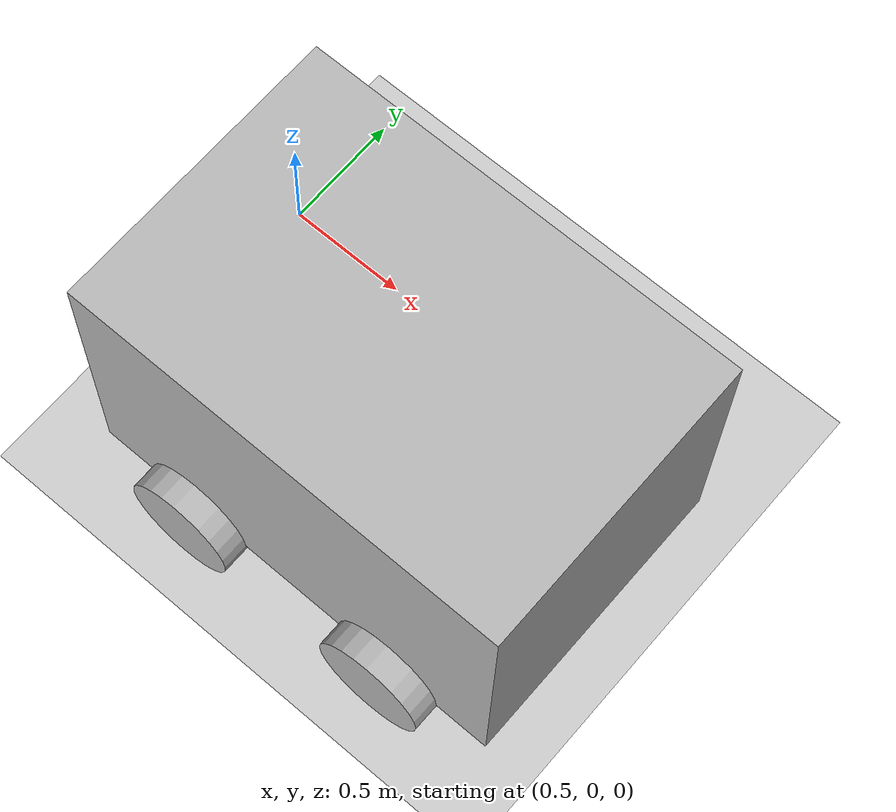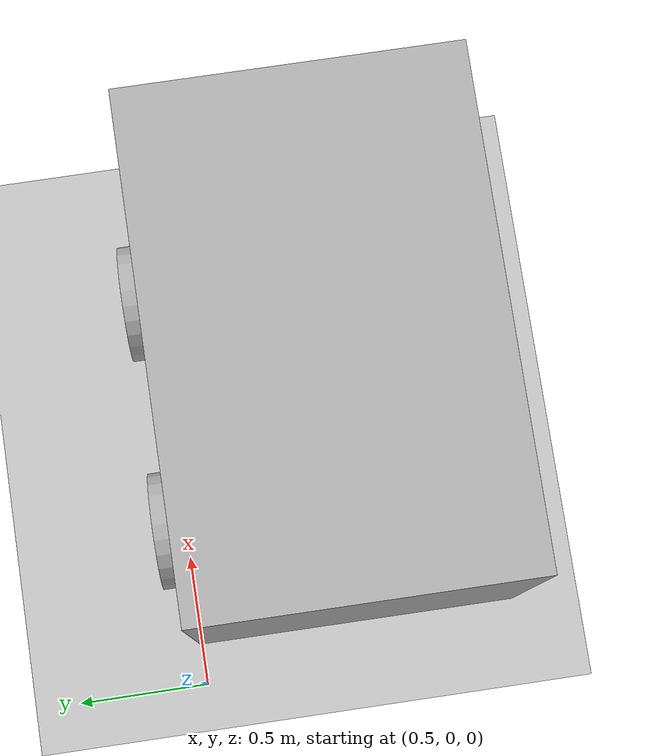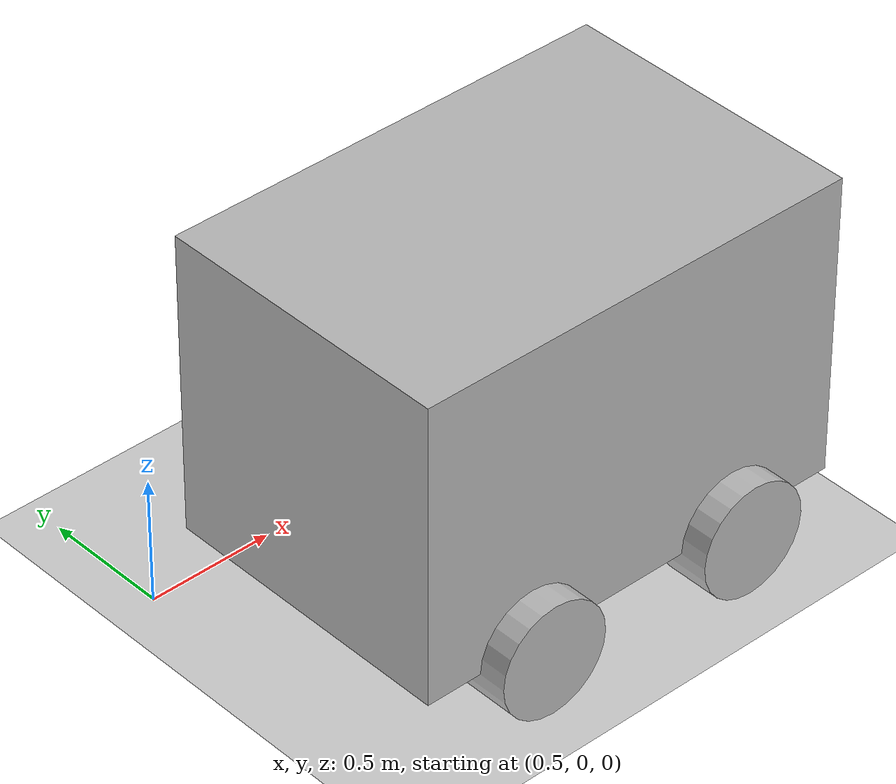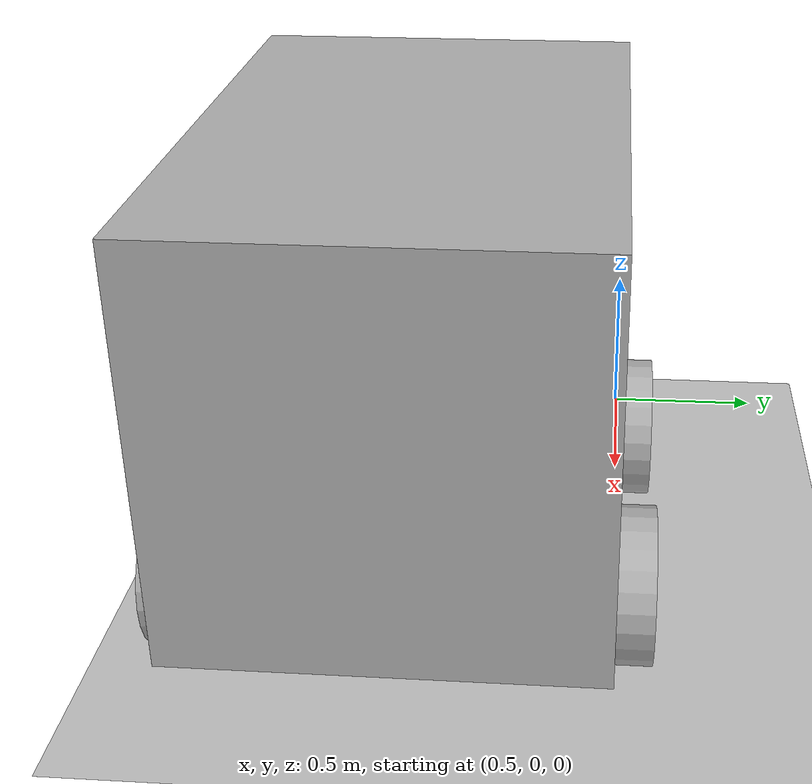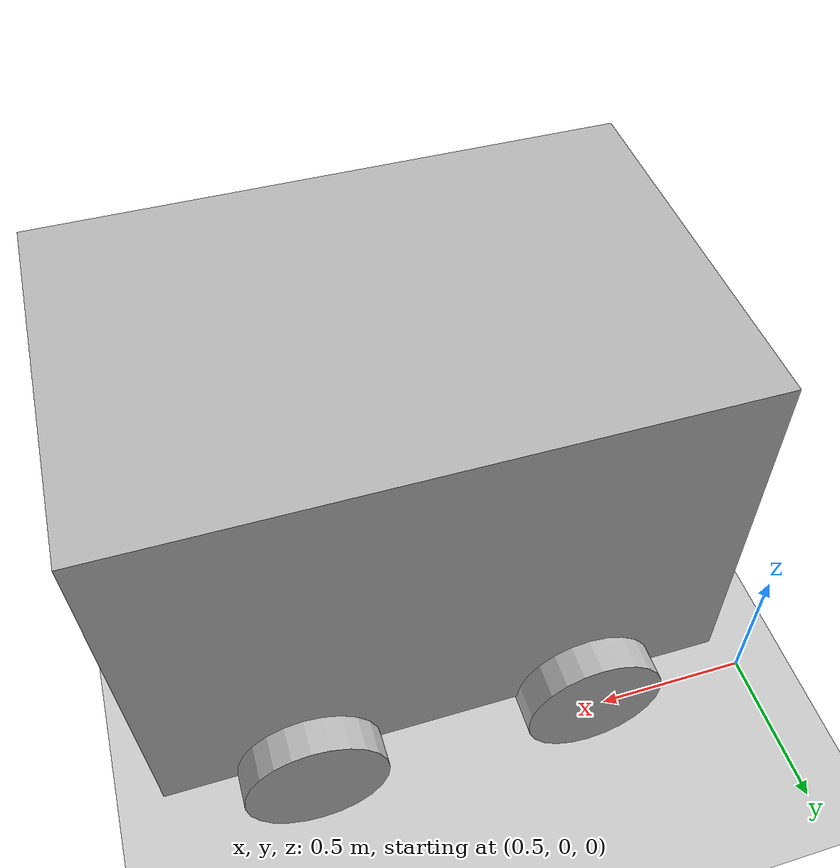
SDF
<sdf version="1.7">
 <world name="rover_world">
  <model name="ground_plane">
   <static>1</static>
   <link name="link">
    <collision name="collision">
     <geometry><plane><normal>0 0 1</normal><size>100 100</size></plane></geometry>
     <surface>
      <contact><collide_bitmask>65535</collide_bitmask></contact>
      <friction><ode><mu>100</mu><mu2>50</mu2></ode></friction>
     </surface>
    </collision>
    <visual name="visual">
     <cast_shadows>0</cast_shadows>
     <geometry><plane><normal>0 0 1</normal><size>100 100</size></plane></geometry>
     <material>
      <script><uri>file://media/materials/scripts/gazebo.material</uri><name>Gazebo/Grey</name></script>
     </material>
    </visual>
   </link>
  </model>
  <model name="robot_3">
   <link name="base_link">
    <inertial>
     <mass>5</mass>
     <inertia><ixx>1.2</ixx><ixy>0</ixy><ixz>0</ixz><iyy>1.95</iyy><iyz>0</iyz><izz>1.95</izz></inertia>
    </inertial>
    <collision name="base_link_collision"><geometry><box><size>1.8 1.2 1.2</size></box></geometry></collision>
    <visual name="base_link_visual"><geometry><box><size>1.8 1.2 1.2</size></box></geometry></visual>
   </link>
   <joint name="lb_wheel_joint" type="revolute">
    <pose relative_to="base_link">-0.45 0.6 -0.6 -1.5708 0 0</pose>
    <parent>base_link</parent>
    <child>lb_wheel</child>
    <axis>
     <xyz>0 0 1</xyz>
     <limit><lower>-1e+16</lower><upper>1e+16</upper></limit>
     <dynamics><spring_reference>0</spring_reference><spring_stiffness>0</spring_stiffness></dynamics>
    </axis>
   </joint>
   <link name="lb_wheel">
    <pose relative_to="lb_wheel_joint">0 0 0 0 -0 0</pose>
    <inertial>
     <mass>0.25</mass>
     <inertia>
      <ixx>0.0041724</ixx>
      <ixy>0</ixy>
      <ixz>0</ixz>
      <iyy>0.0041724</iyy>
      <iyz>0</iyz>
      <izz>0.00632813</izz>
     </inertia>
    </inertial>
    <collision name="lb_wheel_collision">
     <geometry><cylinder><length>0.22</length><radius>0.225</radius></cylinder></geometry>
    </collision>
    <visual name="lb_wheel_visual">
     <geometry><cylinder><length>0.22</length><radius>0.225</radius></cylinder></geometry>
    </visual>
   </link>
   <joint name="lf_wheel_joint" type="revolute">
    <pose relative_to="base_link">0.45 0.6 -0.6 -1.5708 0 0</pose>
    <parent>base_link</parent>
    <child>lf_wheel</child>
    <axis>
     <xyz>0 0 1</xyz>
     <limit><lower>-1e+16</lower><upper>1e+16</upper></limit>
     <dynamics><spring_reference>0</spring_reference><spring_stiffness>0</spring_stiffness></dynamics>
    </axis>
   </joint>
   <link name="lf_wheel">
    <pose relative_to="lf_wheel_joint">0 0 0 0 -0 0</pose>
    <inertial>
     <mass>0.25</mass>
     <inertia>
      <ixx>0.0041724</ixx>
      <ixy>0</ixy>
      <ixz>0</ixz>
      <iyy>0.0041724</iyy>
      <iyz>0</iyz>
      <izz>0.00632813</izz>
     </inertia>
    </inertial>
    <collision name="lf_wheel_collision">
     <geometry><cylinder><length>0.22</length><radius>0.225</radius></cylinder></geometry>
    </collision>
    <visual name="lf_wheel_visual">
     <geometry><cylinder><length>0.22</length><radius>0.225</radius></cylinder></geometry>
    </visual>
   </link>
   <joint name="rb_wheel_joint" type="revolute">
    <pose relative_to="base_link">-0.45 -0.6 -0.6 1.5708 -0 0</pose>
    <parent>base_link</parent>
    <child>rb_wheel</child>
    <axis>
     <xyz>0 0 -1</xyz>
     <limit><lower>-1e+16</lower><upper>1e+16</upper></limit>
     <dynamics><spring_reference>0</spring_reference><spring_stiffness>0</spring_stiffness></dynamics>
    </axis>
   </joint>
   <link name="rb_wheel">
    <pose relative_to="rb_wheel_joint">0 0 0 0 -0 0</pose>
    <inertial>
     <mass>0.25</mass>
     <inertia>
      <ixx>0.0041724</ixx>
      <ixy>0</ixy>
      <ixz>0</ixz>
      <iyy>0.0041724</iyy>
      <iyz>0</iyz>
      <izz>0.00632813</izz>
     </inertia>
    </inertial>
    <collision name="rb_wheel_collision">
     <geometry><cylinder><length>0.22</length><radius>0.225</radius></cylinder></geometry>
    </collision>
    <visual name="rb_wheel_visual">
     <geometry><cylinder><length>0.22</length><radius>0.225</radius></cylinder></geometry>
    </visual>
   </link>
   <joint name="rf_wheel_joint" type="revolute">
    <pose relative_to="base_link">0.45 -0.6 -0.6 1.5708 -0 0</pose>
    <parent>base_link</parent>
    <child>rf_wheel</child>
    <axis>
     <xyz>0 0 -1</xyz>
     <limit><lower>-1e+16</lower><upper>1e+16</upper></limit>
     <dynamics><spring_reference>0</spring_reference><spring_stiffness>0</spring_stiffness></dynamics>
    </axis>
   </joint>
   <link name="rf_wheel">
    <pose relative_to="rf_wheel_joint">0 0 0 0 -0 0</pose>
    <inertial>
     <mass>0.25</mass>
     <inertia>
      <ixx>0.0041724</ixx>
      <ixy>0</ixy>
      <ixz>0</ixz>
      <iyy>0.0041724</iyy>
      <iyz>0</iyz>
      <izz>0.00632813</izz>
     </inertia>
    </inertial>
    <collision name="rf_wheel_collision">
     <geometry><cylinder><length>0.22</length><radius>0.225</radius></cylinder></geometry>
    </collision>
    <visual name="rf_wheel_visual">
     <geometry><cylinder><length>0.22</length><radius>0.225</radius></cylinder></geometry>
    </visual>
   </link>
   <static>0</static>
   <plugin name="gazebo_control" filename="libgazebo_ros_diff_drive.so">
    <num_wheel_pairs>2</num_wheel_pairs>
    <ros><namespace>robot3</namespace></ros>
    <left_joint>lb_wheel_joint</left_joint>
    <right_joint>rb_wheel_joint</right_joint>
    <left_joint>lf_wheel_joint</left_joint>
    <right_joint>rf_wheel_joint</right_joint>
    <wheel_separation>1.2</wheel_separation>
    <wheel_diameter>0.45</wheel_diameter>
    <command_topic>cmd_vel</command_topic>
    <update_rate>50</update_rate>
    <max_wheel_torque>100</max_wheel_torque>
    <max_wheel_acceleration>5.0</max_wheel_acceleration>
    <odometry_frame>odom</odometry_frame>
    <robot_base_frame>base_link</robot_base_frame>
    <publish_odom>1</publish_odom>
    <publish_odom_tf>1</publish_odom_tf>
    <publish_wheel_tf>1</publish_wheel_tf>
   </plugin>
   <pose>1.54961 -0.602453 0.826002 3e-06 1e-06 -0.001217</pose>
  </model>
 </world>
</sdf>
